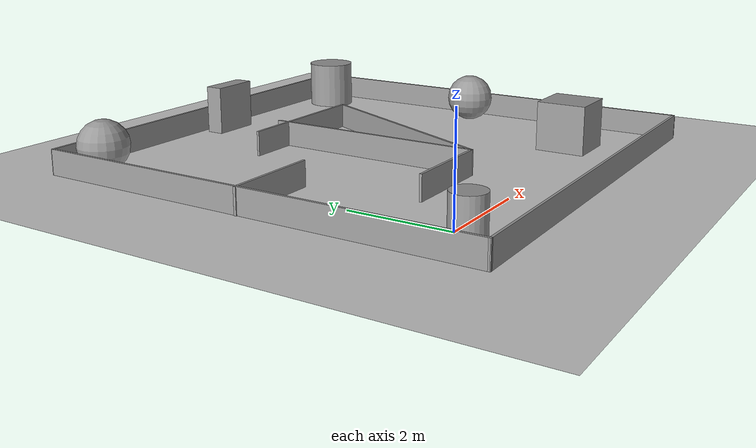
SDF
<sdf version="1.7">
 <world name="default">
  <light name="sun" type="directional">
   <pose>0 0 10 0 -0 0</pose>
   <diffuse>0.8 0.8 0.8 1</diffuse>
   <specular>0.2 0.2 0.2 1</specular>
   <attenuation>
    <range>1000</range>
    <constant>0.9</constant>
    <linear>0.01</linear>
    <quadratic>0.001</quadratic>
   </attenuation>
   <direction>-0.5 0.1 -0.9</direction>
   <spot><inner_angle>0</inner_angle><outer_angle>0</outer_angle><falloff>0</falloff></spot>
  </light>
  <model name="ground_plane">
   <static>1</static>
   <link name="link">
    <collision name="collision">
     <geometry><plane><normal>0 0 1</normal><size>100 100</size></plane></geometry>
     <surface><friction><ode><mu>100</mu><mu2>50</mu2></ode></friction></surface>
    </collision>
    <visual name="visual">
     <cast_shadows>0</cast_shadows>
     <geometry><plane><normal>0 0 1</normal><size>100 100</size></plane></geometry>
     <material>
      <script><uri>file://media/materials/scripts/gazebo.material</uri><name>Gazebo/Grey</name></script>
     </material>
    </visual>
   </link>
  </model>
  <gravity>0 0 -9.8</gravity>
  <magnetic_field>6e-06 2.3e-05 -4.2e-05</magnetic_field>
  <atmosphere type="adiabatic"/>
  <physics type="ode">
   <max_step_size>0.001</max_step_size>
   <real_time_factor>1</real_time_factor>
   <real_time_update_rate>1000</real_time_update_rate>
  </physics>
  <scene><ambient>0.4 0.4 0.4 1</ambient><background>0.7 0.7 0.7 1</background><shadows>1</shadows></scene>
  <spherical_coordinates>
   <surface_model>EARTH_WGS84</surface_model>
   <latitude_deg>0</latitude_deg>
   <longitude_deg>0</longitude_deg>
   <elevation>0</elevation>
   <heading_deg>0</heading_deg>
  </spherical_coordinates>
  <model name="world2">
   <pose>3.26813 3.32002 0 0 -0 0</pose>
   <link name="Wall_0">
    <collision name="Wall_0_Collision">
     <geometry><box><size>9 0.05 0.5</size></box></geometry>
     <pose>0 0 0.25 0 -0 0</pose>
    </collision>
    <visual name="Wall_0_Visual">
     <pose>0 0 0.25 0 -0 0</pose>
     <geometry><box><size>9 0.05 0.5</size></box></geometry>
     <material>
      <script><uri>file://media/materials/scripts/gazebo.material</uri><name>Gazebo/Grey</name></script>
      <ambient>1 1 1 1</ambient>
     </material>
     <meta><layer>0</layer></meta>
    </visual>
    <pose>4.43501 -2.8e-05 0 0 -0 -1.5708</pose>
   </link>
   <link name="Wall_1">
    <collision name="Wall_1_Collision">
     <geometry><box><size>8.90002 0.05 0.5</size></box></geometry>
     <pose>0 0 0.25 0 -0 0</pose>
    </collision>
    <visual name="Wall_1_Visual">
     <pose>0 0 0.25 0 -0 0</pose>
     <geometry><box><size>8.90002 0.05 0.5</size></box></geometry>
     <material>
      <script><uri>file://media/materials/scripts/gazebo.material</uri><name>Gazebo/Grey</name></script>
      <ambient>1 1 1 1</ambient>
     </material>
     <meta><layer>0</layer></meta>
    </visual>
    <pose>0.010008 -4.48508 0 0 -0 -3.13932</pose>
   </link>
   <link name="Wall_12">
    <collision name="Wall_12_Collision">
     <geometry><box><size>3 0.05 0.5</size></box></geometry>
     <pose>0 0 0.25 0 -0 0</pose>
    </collision>
    <visual name="Wall_12_Visual">
     <pose>0 0 0.25 0 -0 0</pose>
     <geometry><box><size>3 0.05 0.5</size></box></geometry>
     <material>
      <script><uri>file://media/materials/scripts/gazebo.material</uri><name>Gazebo/Grey</name></script>
      <ambient>1 1 1 1</ambient>
     </material>
     <meta><layer>0</layer></meta>
    </visual>
    <pose>0.144008 2.10186 0 0 -0 3.14159</pose>
   </link>
   <link name="Wall_14">
    <collision name="Wall_14_Collision">
     <geometry><box><size>4.71432 0.05 0.5</size></box></geometry>
     <pose>0 0 0.25 0 -0 0</pose>
    </collision>
    <visual name="Wall_14_Visual">
     <pose>0 0 0.25 0 -0 0</pose>
     <geometry><box><size>4.71432 0.05 0.5</size></box></geometry>
     <material>
      <script><uri>file://media/materials/scripts/gazebo.material</uri><name>Gazebo/Grey</name></script>
      <ambient>1 1 1 1</ambient>
     </material>
     <meta><layer>0</layer></meta>
    </visual>
    <pose>0.631508 -0.011142 0 0 -0 -2.00798</pose>
   </link>
   <link name="Wall_16">
    <collision name="Wall_16_Collision">
     <geometry><box><size>4.5 0.05 0.5</size></box></geometry>
     <pose>0 0 0.25 0 -0 0</pose>
    </collision>
    <visual name="Wall_16_Visual">
     <pose>0 0 0.25 0 -0 0</pose>
     <geometry><box><size>4.5 0.05 0.5</size></box></geometry>
     <material>
      <script><uri>file://media/materials/scripts/gazebo.material</uri><name>Gazebo/Grey</name></script>
      <ambient>1 1 1 1</ambient>
     </material>
     <meta><layer>0</layer></meta>
    </visual>
    <pose>-0.355992 0.101087 0 0 -0 1.5708</pose>
   </link>
   <link name="Wall_2">
    <collision name="Wall_2_Collision">
     <geometry><box><size>9 0.05 0.5</size></box></geometry>
     <pose>0 0 0.25 0 -0 0</pose>
    </collision>
    <visual name="Wall_2_Visual">
     <pose>0 0 0.25 0 -0 0</pose>
     <geometry><box><size>9 0.05 0.5</size></box></geometry>
     <material>
      <script><uri>file://media/materials/scripts/gazebo.material</uri><name>Gazebo/Grey</name></script>
      <ambient>1 1 1 1</ambient>
     </material>
     <meta><layer>0</layer></meta>
    </visual>
    <pose>-4.41499 -0.020142 0 0 -0 1.5708</pose>
   </link>
   <link name="Wall_21">
    <collision name="Wall_21_Collision">
     <geometry><box><size>1.9 0.05 0.5</size></box></geometry>
     <pose>0 0 0.25 0 -0 0</pose>
    </collision>
    <visual name="Wall_21_Visual">
     <pose>0 0 0.25 0 -0 0</pose>
     <geometry><box><size>1.9 0.05 0.5</size></box></geometry>
     <material>
      <script><uri>file://media/materials/scripts/gazebo.material</uri><name>Gazebo/Grey</name></script>
      <ambient>1 1 1 1</ambient>
     </material>
     <meta><layer>0</layer></meta>
    </visual>
    <pose>-1.28099 -2.12414 0 0 -0 3.14159</pose>
   </link>
   <link name="Wall_3">
    <collision name="Wall_3_Collision">
     <geometry><box><size>8.9 0.05 0.5</size></box></geometry>
     <pose>0 0 0.25 0 -0 0</pose>
    </collision>
    <visual name="Wall_3_Visual">
     <pose>0 0 0.25 0 -0 0</pose>
     <geometry><box><size>8.9 0.05 0.5</size></box></geometry>
     <material>
      <script><uri>file://media/materials/scripts/gazebo.material</uri><name>Gazebo/Grey</name></script>
      <ambient>1 1 1 1</ambient>
     </material>
     <meta><layer>0</layer></meta>
    </visual>
    <pose>0.010008 4.47497 0 0 -0 0.004545</pose>
   </link>
   <link name="Wall_6">
    <collision name="Wall_6_Collision">
     <geometry><box><size>1.90017 0.05 0.5</size></box></geometry>
     <pose>0 0 0.25 0 -0 0</pose>
    </collision>
    <visual name="Wall_6_Visual">
     <pose>0 0 0.25 0 -0 0</pose>
     <geometry><box><size>1.90017 0.05 0.5</size></box></geometry>
     <material>
      <script><uri>file://media/materials/scripts/gazebo.material</uri><name>Gazebo/Grey</name></script>
      <ambient>1 1 1 1</ambient>
     </material>
     <meta><layer>0</layer></meta>
    </visual>
    <pose>-3.50999 0.070858 0 0 -0 0</pose>
   </link>
   <static>1</static>
  </model>
  <model name="unit_box">
   <pose>5.79276 0.428832 0.5 -0 -0 -0</pose>
   <link name="link">
    <inertial>
     <mass>1</mass>
     <inertia>
      <ixx>0.166667</ixx>
      <ixy>0</ixy>
      <ixz>0</ixz>
      <iyy>0.166667</iyy>
      <iyz>0</iyz>
      <izz>0.166667</izz>
     </inertia>
    </inertial>
    <collision name="collision"><geometry><box><size>1 1 1</size></box></geometry></collision>
    <visual name="visual">
     <geometry><box><size>1 1 1</size></box></geometry>
     <material>
      <script><name>Gazebo/Grey</name><uri>file://media/materials/scripts/gazebo.material</uri></script>
     </material>
    </visual>
   </link>
  </model>
  <model name="unit_sphere">
   <pose>-0.468013 7.17995 0.5 0 -0 0</pose>
   <link name="link">
    <inertial>
     <mass>1</mass>
     <inertia><ixx>0.1</ixx><ixy>0</ixy><ixz>0</ixz><iyy>0.1</iyy><iyz>0</iyz><izz>0.1</izz></inertia>
    </inertial>
    <collision name="collision"><geometry><sphere><radius>0.5</radius></sphere></geometry></collision>
    <visual name="visual">
     <geometry><sphere><radius>0.5</radius></sphere></geometry>
     <material>
      <script><name>Gazebo/Grey</name><uri>file://media/materials/scripts/gazebo.material</uri></script>
     </material>
    </visual>
   </link>
  </model>
  <model name="unit_cylinder">
   <pose>6.83583 7.09252 0.499992 -3e-06 3e-06 0</pose>
   <link name="link">
    <inertial>
     <mass>1</mass>
     <inertia><ixx>0.145833</ixx><ixy>0</ixy><ixz>0</ixz><iyy>0.145833</iyy><iyz>0</iyz><izz>0.125</izz></inertia>
    </inertial>
    <collision name="collision">
     <geometry><cylinder><radius>0.5</radius><length>1</length></cylinder></geometry>
    </collision>
    <visual name="visual">
     <geometry><cylinder><radius>0.5</radius><length>1</length></cylinder></geometry>
     <material>
      <script><name>Gazebo/Grey</name><uri>file://media/materials/scripts/gazebo.material</uri></script>
     </material>
    </visual>
   </link>
  </model>
  <model name="unit_sphere_0">
   <pose>7.08741 3.36734 0.5 0 -0 0</pose>
   <link name="link">
    <inertial>
     <mass>1</mass>
     <inertia><ixx>0.1</ixx><ixy>0</ixy><ixz>0</ixz><iyy>0.1</iyy><iyz>0</iyz><izz>0.1</izz></inertia>
    </inertial>
    <collision name="collision"><geometry><sphere><radius>0.5</radius></sphere></geometry></collision>
    <visual name="visual">
     <geometry><sphere><radius>0.5</radius></sphere></geometry>
     <material>
      <script><name>Gazebo/Grey</name><uri>file://media/materials/scripts/gazebo.material</uri></script>
     </material>
    </visual>
   </link>
  </model>
  <model name="unit_box_0">
   <pose>3.41709 7.44114 0.5 0 0 -3e-06</pose>
   <link name="link">
    <inertial>
     <mass>1</mass>
     <inertia>
      <ixx>0.166667</ixx>
      <ixy>0</ixy>
      <ixz>0</ixz>
      <iyy>0.166667</iyy>
      <iyz>0</iyz>
      <izz>0.166667</izz>
     </inertia>
    </inertial>
    <collision name="collision"><geometry><box><size>1 0.364928 1</size></box></geometry></collision>
    <visual name="visual">
     <geometry><box><size>1 0.364928 1</size></box></geometry>
     <material>
      <script><name>Gazebo/Grey</name><uri>file://media/materials/scripts/gazebo.material</uri></script>
     </material>
    </visual>
   </link>
  </model>
  <model name="unit_cylinder_0">
   <pose>-0.781959 -0.636913 0.499992 0 -0 0</pose>
   <link name="link">
    <inertial>
     <mass>1</mass>
     <inertia><ixx>0.145833</ixx><ixy>0</ixy><ixz>0</ixz><iyy>0.145833</iyy><iyz>0</iyz><izz>0.125</izz></inertia>
    </inertial>
    <collision name="collision">
     <geometry><cylinder><radius>0.305286</radius><length>1</length></cylinder></geometry>
    </collision>
    <visual name="visual">
     <geometry><cylinder><radius>0.305286</radius><length>1</length></cylinder></geometry>
     <material>
      <script><name>Gazebo/Grey</name><uri>file://media/materials/scripts/gazebo.material</uri></script>
     </material>
    </visual>
   </link>
  </model>
 </world>
</sdf>
